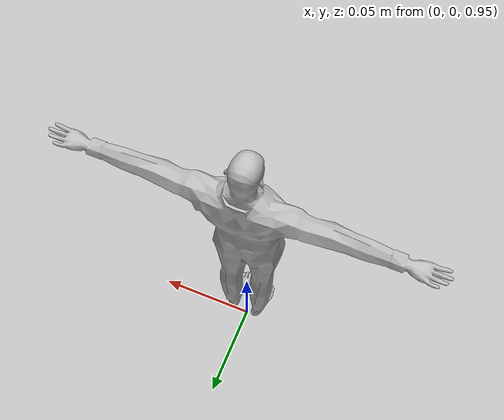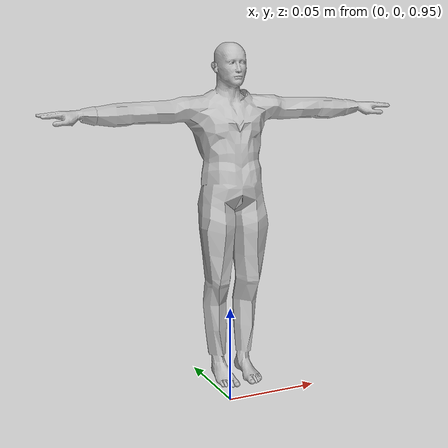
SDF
<?xml version="1.0" ?>
<sdf version="1.5">
  <model name="human_actor">
    <pose>0 0 0 0 0 0</pose>
    <static>false</static>

    <link name="human_base_link">
      <pose>0 0 0 0 0 0</pose>
      <inertial>
        <mass>70.0</mass>
        <inertia>
          <ixx>1.4</ixx> <ixy>0</ixy> <ixz>0</ixz>
          <iyy>1.4</iyy> <iyz>0</iyz>
          <izz>1.4</izz>
        </inertia>
      </inertial>

      <collision name="human_collision">
        <pose>0 0 0.9 0 0 0</pose>
        <geometry>
          <box>
            <size>0.5 0.5 1.8</size>
          </box>
        </geometry>
      </collision>

      <visual name="visual">
        <pose>0 0 1.05 0 0 0</pose>
        <geometry>
          <mesh>
            <uri>file://media/models/walk.dae</uri>
            <scale>1.0 1.0 1.0</scale>
          </mesh>
        </geometry>
      </visual>
    </link>

    <plugin name="human_control" filename="libgazebo_ros_planar_move.so">
      <commandTopic>/human/cmd_vel</commandTopic>
      <odometryTopic>/human/odom</odometryTopic>
      <odometryFrame>human_odom</odometryFrame>
      <odometryRate>20.0</odometryRate>
      <robotBaseFrame>human_base_link</robotBaseFrame>
    </plugin>
  </model>
</sdf>
